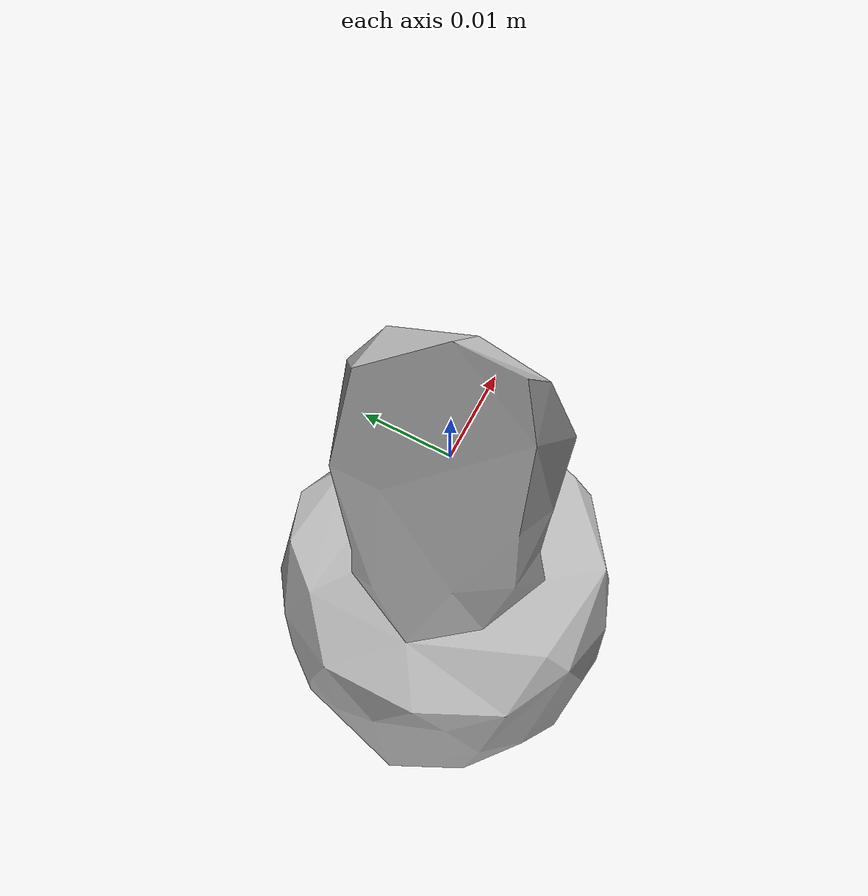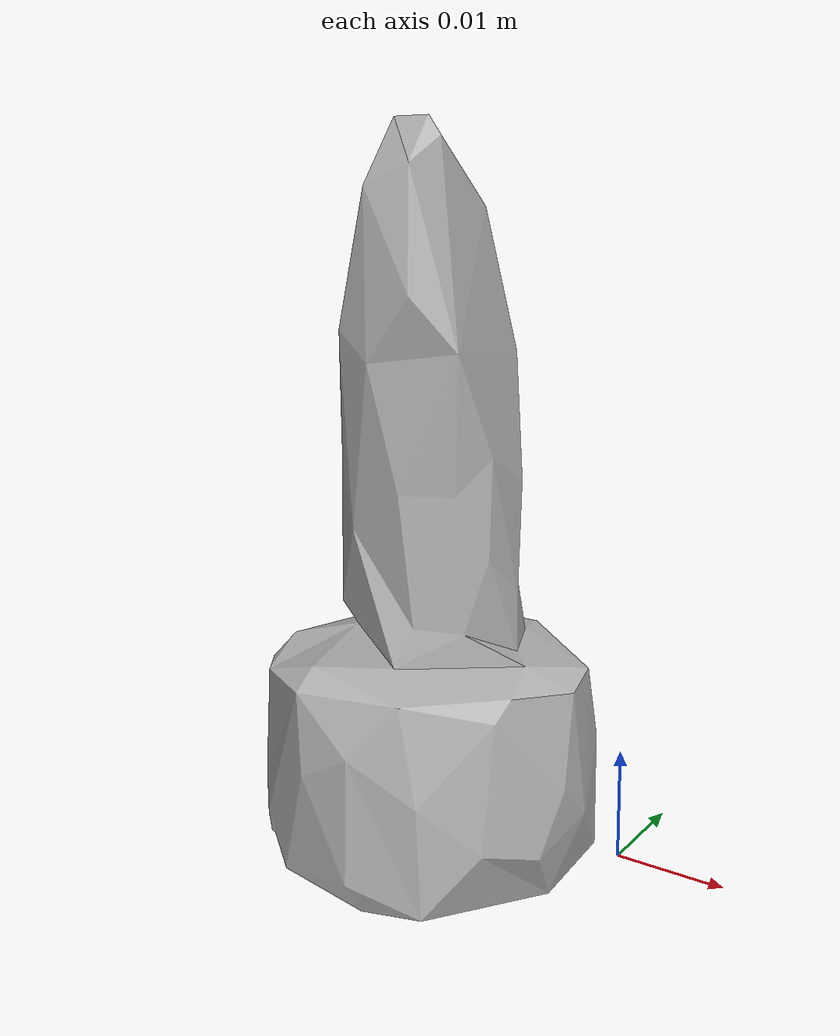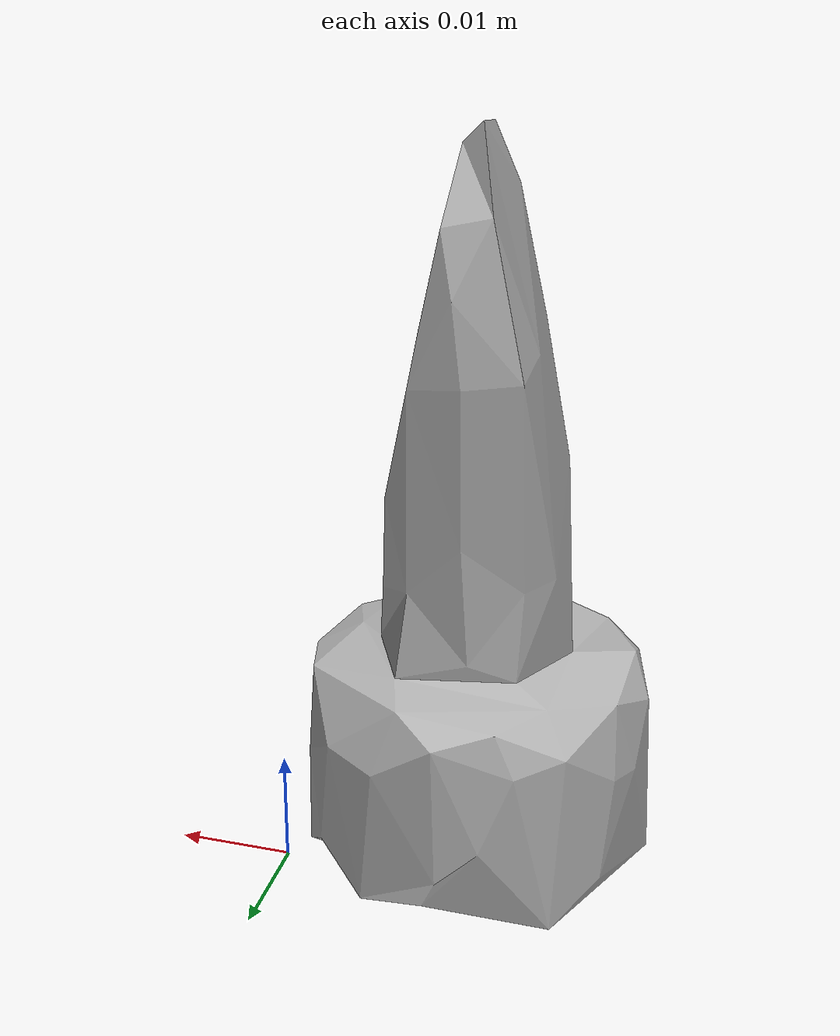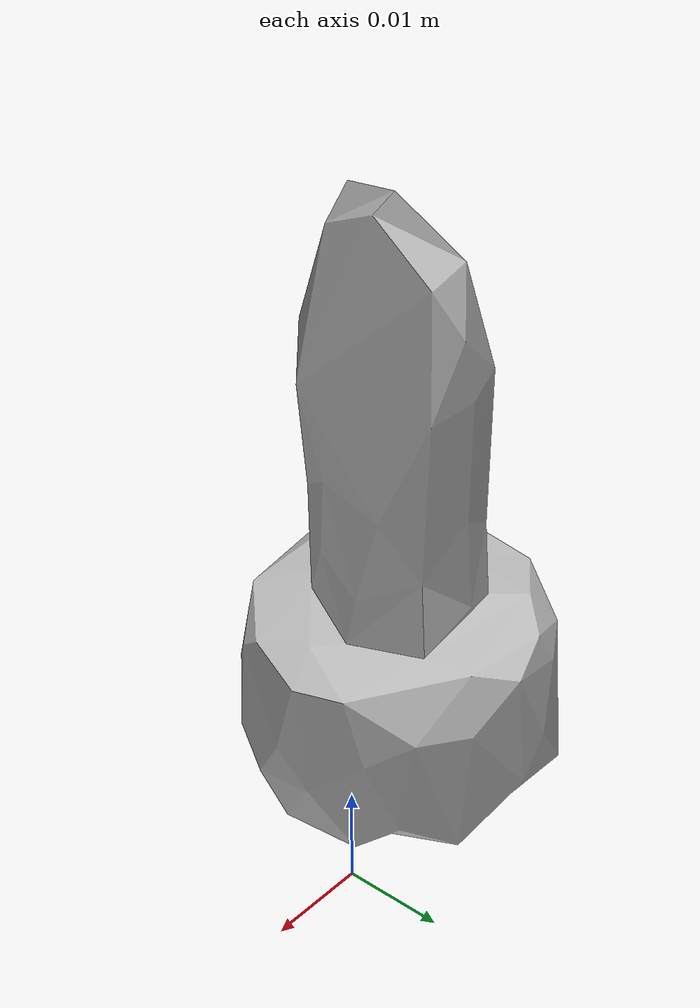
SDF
<?xml version='1.0'?>
<sdf version="1.4">
  <model name="072-e_toy_airplane">
    <static>false</static>
    <link name="link">
      <inertial>
        <pose>-0.01541753387656529 -0.007725653515940342 0.021962304416293148 3.137033239751922 -0.009018448259841792 -2.9925834382617285</pose>
        <mass>0.002830523499652887</mass>
        <inertia>
          <ixx>7.723439686345619e-07</ixx>
          <ixy>-4.8156703496191323e-23</ixy>
          <ixz>4.99759253927634e-24</ixz>
          <iyy>7.591640614555138e-07</iyy>
          <iyz>4.952715520304671e-23</iyz>
          <izz>2.623099254551562e-07</izz>
        </inertia>
      </inertial>
      <collision name="collision">
        <geometry>
          <mesh>
            <!-- Use a downsampled mesh for collisions -->
            <uri>model:///072-e_toy_airplane/072-e_toy_airplane_250_collision.stl</uri>
	        </mesh>
        </geometry>
        <surface>
      </surface>
      </collision>
      <visual name="visual">
        <geometry>
          <mesh>
            <uri>model:///072-e_toy_airplane/textured.obj</uri>
	        </mesh>
        </geometry>
        <material>
          <script>
            <uri>model:///072-e_toy_airplane/072-e_toy_airplane.material</uri>
            <name>072-e_toy_airplane</name>
          </script>
        </material>
      </visual>
    </link>
  </model>
</sdf>
